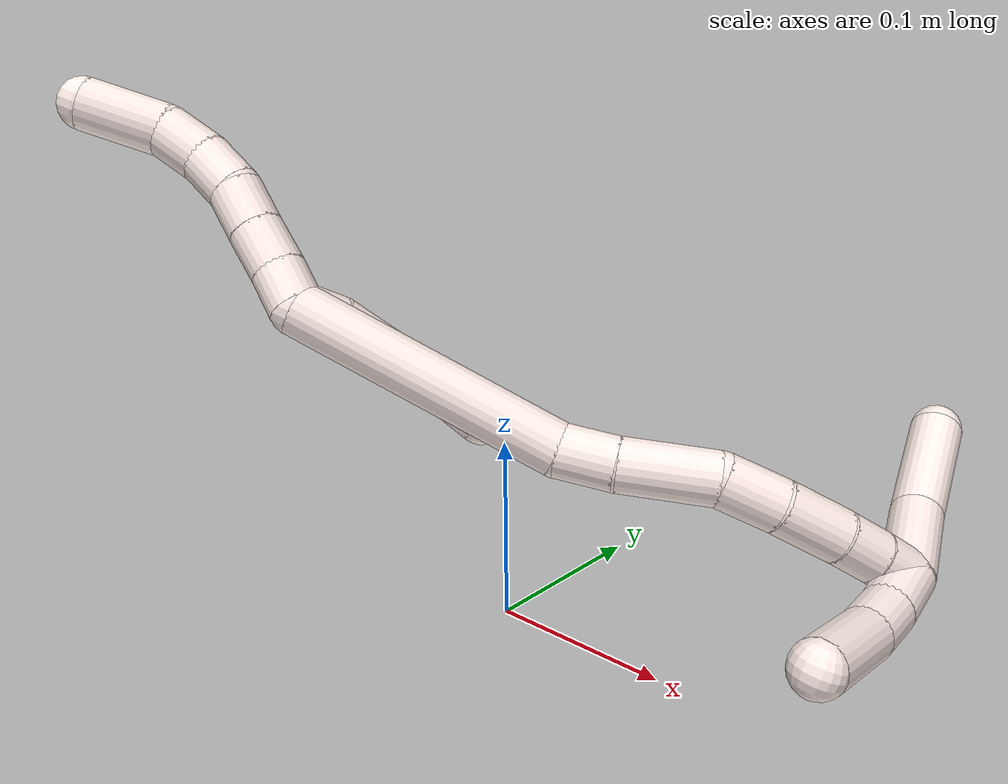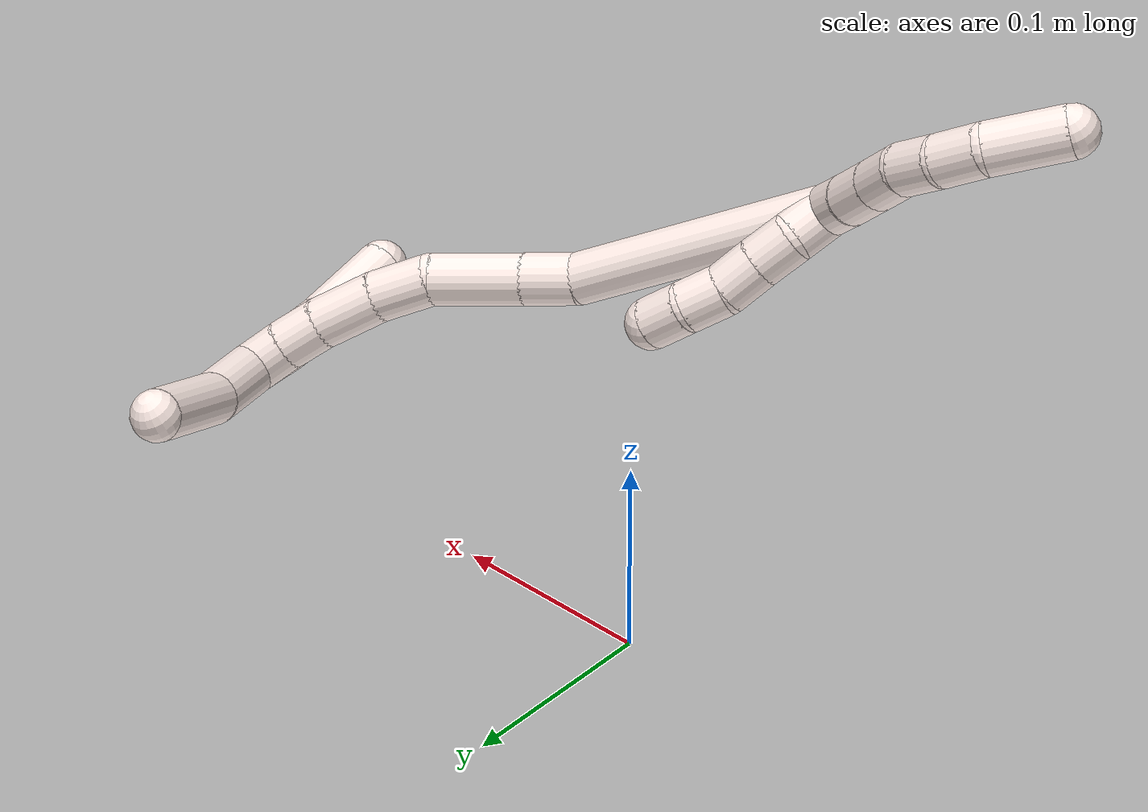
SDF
<sdf version="1.7">
 <world name="default">
  <model name="photoneo_s_sensor">
   <static>1</static>
   <pose>0 0 2 1.57079 1.57079 3.14159</pose>
   <link name="link">
    <inertial><mass>0.1</mass></inertial>
    <sensor name="sensor" type="depth">
     <update_rate>30</update_rate>
     <camera>
      <horizontal_fov>1.22</horizontal_fov>
      <image><width>1920</width><height>1200</height><format>B8G8R8</format></image>
      <clip><near>0.1</near><far>4</far></clip>
      <depth_camera><output>points</output></depth_camera>
     </camera>
     <plugin name="camera_plugin" filename="libgazebo_ros_depth_camera.so">
      <baseline>0.2</baseline>
      <alwaysOn>1</alwaysOn>
      <updateRate>0.0</updateRate>
      <cameraName>camera_ir</cameraName>
      <imageTopicName>/camera/color/image_raw</imageTopicName>
      <cameraInfoTopicName>/camera/color/camera_info</cameraInfoTopicName>
      <depthImageTopicName>/camera/depth/image_raw</depthImageTopicName>
      <depthImageCameraInfoTopicName>/camera/depth/camera_info</depthImageCameraInfoTopicName>
      <pointCloudTopicName>/camera/depth/points</pointCloudTopicName>
      <frameName>fr_optical</frameName>
      <pointCloudCutoff>0.1</pointCloudCutoff>
      <pointCloudCutoffMax>2.0</pointCloudCutoffMax>
      <distortionK1>0</distortionK1>
      <distortionK2>0</distortionK2>
      <distortionK3>0</distortionK3>
      <distortionT1>0</distortionT1>
      <distortionT2>0</distortionT2>
      <CxPrime>0</CxPrime>
      <Cx>0</Cx>
      <Cy>0</Cy>
      <focalLength>0</focalLength>
      <hackBaseline>0</hackBaseline>
     </plugin>
    </sensor>
   </link>
  </model>
  <model name="bin">
   <static>1</static>
   <link name="bottom">
    <collision name="collision-bottom">
     <pose>0 0 -0.01 0 -0 0</pose>
     <geometry><box><size>0.8 0.6 0.02</size></box></geometry>
     <surface>
      <friction><ode><mu>100</mu><mu2>100</mu2></ode></friction>
      <contact><collide_bitmask>65535</collide_bitmask></contact>
     </surface>
    </collision>
   </link>
   <link name="west_wall">
    <collision name="collision-west_wall">
     <pose>-0.41 0 0.1 0 -0 0</pose>
     <geometry><box><size>0.02 0.6 0.2</size></box></geometry>
     <surface>
      <friction><ode><mu>100</mu><mu2>100</mu2></ode></friction>
      <contact><collide_bitmask>65535</collide_bitmask></contact>
     </surface>
    </collision>
   </link>
   <link name="east_wall">
    <collision name="collision-east_wall">
     <pose>0.41 0 0.1 0 -0 0</pose>
     <geometry><box><size>0.02 0.6 0.2</size></box></geometry>
     <surface>
      <friction><ode><mu>100</mu><mu2>100</mu2></ode></friction>
      <contact><collide_bitmask>65535</collide_bitmask></contact>
     </surface>
    </collision>
   </link>
   <link name="south_wall">
    <collision name="collision-south_wall">
     <pose>0 -0.31 0.1 0 -0 0</pose>
     <geometry><box><size>0.8 0.02 0.2</size></box></geometry>
     <surface>
      <friction><ode><mu>100</mu><mu2>100</mu2></ode></friction>
      <contact><collide_bitmask>65535</collide_bitmask></contact>
     </surface>
    </collision>
   </link>
   <link name="north_wall">
    <collision name="collision-north_wall">
     <pose>0 0.31 0.1 0 -0 0</pose>
     <geometry><box><size>0.8 0.02 0.2</size></box></geometry>
     <surface>
      <friction><ode><mu>100</mu><mu2>100</mu2></ode></friction>
      <contact><collide_bitmask>65535</collide_bitmask></contact>
     </surface>
    </collision>
   </link>
  </model>
  <model name="11">
   <static>0</static>
   <link name="11">
    <collision name="collision-cylinder-e_1_2_8">
     <pose>-0.008106 -0.001695 0.005752 0.286511 -0.933836 -0.145169</pose>
     <geometry><cylinder><radius>0.0125</radius><length>0.020165</length></cylinder></geometry>
     <surface>
      <friction><ode><mu>1.16</mu><mu2>1.16</mu2><slip1>0</slip1><slip2>0</slip2></ode></friction>
      <contact><ode><kp>1e+06</kp><kd>1</kd><max_vel>0</max_vel><min_depth>0.001</min_depth></ode></contact>
     </surface>
    </collision>
    <visual name="visual-cylinder-e_1_2_8">
     <pose>-0.008106 -0.001695 0.005752 0.286511 -0.933836 -0.145169</pose>
     <geometry><cylinder><radius>0.0125</radius><length>0.020165</length></cylinder></geometry>
     <material><ambient>1 0.933333 0.909804 1</ambient></material>
    </visual>
    <collision name="collision-cylinder-e_2_8_9">
     <pose>-0.0251 -0.00608 0.017787 0.404571 -0.915365 -0.201358</pose>
     <geometry><cylinder><radius>0.0125</radius><length>0.022425</length></cylinder></geometry>
     <surface>
      <friction><ode><mu>1.16</mu><mu2>1.16</mu2><slip1>0</slip1><slip2>0</slip2></ode></friction>
      <contact><ode><kp>1e+06</kp><kd>1</kd><max_vel>0</max_vel><min_depth>0.001</min_depth></ode></contact>
     </surface>
    </collision>
    <visual name="visual-cylinder-e_2_8_9">
     <pose>-0.0251 -0.00608 0.017787 0.404571 -0.915365 -0.201358</pose>
     <geometry><cylinder><radius>0.0125</radius><length>0.022425</length></cylinder></geometry>
     <material><ambient>1 0.933333 0.909804 1</ambient></material>
    </visual>
    <collision name="collision-cylinder-e_3_9_10">
     <pose>-0.042721 -0.011149 0.030467 0.35609 -0.907287 -0.175024</pose>
     <geometry><cylinder><radius>0.0125</radius><length>0.022165</length></cylinder></geometry>
     <surface>
      <friction><ode><mu>1.16</mu><mu2>1.16</mu2><slip1>0</slip1><slip2>0</slip2></ode></friction>
      <contact><ode><kp>1e+06</kp><kd>1</kd><max_vel>0</max_vel><min_depth>0.001</min_depth></ode></contact>
     </surface>
    </collision>
    <visual name="visual-cylinder-e_3_9_10">
     <pose>-0.042721 -0.011149 0.030467 0.35609 -0.907287 -0.175024</pose>
     <geometry><cylinder><radius>0.0125</radius><length>0.022165</length></cylinder></geometry>
     <material><ambient>1 0.933333 0.909804 1</ambient></material>
    </visual>
    <collision name="collision-cylinder-e_4_10_11">
     <pose>-0.061548 -0.01679 0.040915 0.677852 -1.09512 -0.423469</pose>
     <geometry><cylinder><radius>0.0125</radius><length>0.022714</length></cylinder></geometry>
     <surface>
      <friction><ode><mu>1.16</mu><mu2>1.16</mu2><slip1>0</slip1><slip2>0</slip2></ode></friction>
      <contact><ode><kp>1e+06</kp><kd>1</kd><max_vel>0</max_vel><min_depth>0.001</min_depth></ode></contact>
     </surface>
    </collision>
    <visual name="visual-cylinder-e_4_10_11">
     <pose>-0.061548 -0.01679 0.040915 0.677852 -1.09512 -0.423469</pose>
     <geometry><cylinder><radius>0.0125</radius><length>0.022714</length></cylinder></geometry>
     <material><ambient>1 0.933333 0.909804 1</ambient></material>
    </visual>
    <collision name="collision-cylinder-e_5_11_12">
     <pose>-0.081588 -0.025691 0.047664 1.1246 -1.00955 -0.670093</pose>
     <geometry><cylinder><radius>0.0125</radius><length>0.023491</length></cylinder></geometry>
     <surface>
      <friction><ode><mu>1.16</mu><mu2>1.16</mu2><slip1>0</slip1><slip2>0</slip2></ode></friction>
      <contact><ode><kp>1e+06</kp><kd>1</kd><max_vel>0</max_vel><min_depth>0.001</min_depth></ode></contact>
     </surface>
    </collision>
    <visual name="visual-cylinder-e_5_11_12">
     <pose>-0.081588 -0.025691 0.047664 1.1246 -1.00955 -0.670093</pose>
     <geometry><cylinder><radius>0.0125</radius><length>0.023491</length></cylinder></geometry>
     <material><ambient>1 0.933333 0.909804 1</ambient></material>
    </visual>
    <collision name="collision-cylinder-e_6_12_6">
     <pose>-0.105941 -0.044486 0.049797 1.61366 -0.830407 -0.862518</pose>
     <geometry><cylinder><radius>0.0125</radius><length>0.039039</length></cylinder></geometry>
     <surface>
      <friction><ode><mu>1.16</mu><mu2>1.16</mu2><slip1>0</slip1><slip2>0</slip2></ode></friction>
      <contact><ode><kp>1e+06</kp><kd>1</kd><max_vel>0</max_vel><min_depth>0.001</min_depth></ode></contact>
     </surface>
    </collision>
    <visual name="visual-cylinder-e_6_12_6">
     <pose>-0.105941 -0.044486 0.049797 1.61366 -0.830407 -0.862518</pose>
     <geometry><cylinder><radius>0.0125</radius><length>0.039039</length></cylinder></geometry>
     <material><ambient>1 0.933333 0.909804 1</ambient></material>
    </visual>
    <collision name="collision-cylinder-e_1_2_13">
     <pose>0.002876 0.00954 -0.000846 -1.65923 0.291741 -0.318317</pose>
     <geometry><cylinder><radius>0.0125</radius><length>0.02</length></cylinder></geometry>
     <surface>
      <friction><ode><mu>1.16</mu><mu2>1.16</mu2><slip1>0</slip1><slip2>0</slip2></ode></friction>
      <contact><ode><kp>1e+06</kp><kd>1</kd><max_vel>0</max_vel><min_depth>0.001</min_depth></ode></contact>
     </surface>
    </collision>
    <visual name="visual-cylinder-e_1_2_13">
     <pose>0.002876 0.00954 -0.000846 -1.65923 0.291741 -0.318317</pose>
     <geometry><cylinder><radius>0.0125</radius><length>0.02</length></cylinder></geometry>
     <material><ambient>1 0.933333 0.909804 1</ambient></material>
    </visual>
    <collision name="collision-cylinder-e_2_13_14">
     <pose>0.010628 0.027339 -0.004523 -1.90101 0.509277 -0.698839</pose>
     <geometry><cylinder><radius>0.0125</radius><length>0.02</length></cylinder></geometry>
     <surface>
      <friction><ode><mu>1.16</mu><mu2>1.16</mu2><slip1>0</slip1><slip2>0</slip2></ode></friction>
      <contact><ode><kp>1e+06</kp><kd>1</kd><max_vel>0</max_vel><min_depth>0.001</min_depth></ode></contact>
     </surface>
    </collision>
    <visual name="visual-cylinder-e_2_13_14">
     <pose>0.010628 0.027339 -0.004523 -1.90101 0.509277 -0.698839</pose>
     <geometry><cylinder><radius>0.0125</radius><length>0.02</length></cylinder></geometry>
     <material><ambient>1 0.933333 0.909804 1</ambient></material>
    </visual>
    <collision name="collision-cylinder-e_3_14_15">
     <pose>0.020115 0.043963 -0.010315 -1.91108 0.479307 -0.665722</pose>
     <geometry><cylinder><radius>0.0125</radius><length>0.02</length></cylinder></geometry>
     <surface>
      <friction><ode><mu>1.16</mu><mu2>1.16</mu2><slip1>0</slip1><slip2>0</slip2></ode></friction>
      <contact><ode><kp>1e+06</kp><kd>1</kd><max_vel>0</max_vel><min_depth>0.001</min_depth></ode></contact>
     </surface>
    </collision>
    <visual name="visual-cylinder-e_3_14_15">
     <pose>0.020115 0.043963 -0.010315 -1.91108 0.479307 -0.665722</pose>
     <geometry><cylinder><radius>0.0125</radius><length>0.02</length></cylinder></geometry>
     <material><ambient>1 0.933333 0.909804 1</ambient></material>
    </visual>
    <collision name="collision-cylinder-e_4_15_16">
     <pose>0.031009 0.059967 -0.014749 -1.76124 0.679295 -0.80876</pose>
     <geometry><cylinder><radius>0.0125</radius><length>0.02</length></cylinder></geometry>
     <surface>
      <friction><ode><mu>1.16</mu><mu2>1.16</mu2><slip1>0</slip1><slip2>0</slip2></ode></friction>
      <contact><ode><kp>1e+06</kp><kd>1</kd><max_vel>0</max_vel><min_depth>0.001</min_depth></ode></contact>
     </surface>
    </collision>
    <visual name="visual-cylinder-e_4_15_16">
     <pose>0.031009 0.059967 -0.014749 -1.76124 0.679295 -0.80876</pose>
     <geometry><cylinder><radius>0.0125</radius><length>0.02</length></cylinder></geometry>
     <material><ambient>1 0.933333 0.909804 1</ambient></material>
    </visual>
    <collision name="collision-cylinder-e_5_16_5">
     <pose>0.044685 0.073564 -0.01936 -2.05553 0.832094 -1.26384</pose>
     <geometry><cylinder><radius>0.0125</radius><length>0.02</length></cylinder></geometry>
     <surface>
      <friction><ode><mu>1.16</mu><mu2>1.16</mu2><slip1>0</slip1><slip2>0</slip2></ode></friction>
      <contact><ode><kp>1e+06</kp><kd>1</kd><max_vel>0</max_vel><min_depth>0.001</min_depth></ode></contact>
     </surface>
    </collision>
    <visual name="visual-cylinder-e_5_16_5">
     <pose>0.044685 0.073564 -0.01936 -2.05553 0.832094 -1.26384</pose>
     <geometry><cylinder><radius>0.0125</radius><length>0.02</length></cylinder></geometry>
     <material><ambient>1 0.933333 0.909804 1</ambient></material>
    </visual>
    <collision name="collision-cylinder-e_1_2_17">
     <pose>0.050935 0.039112 -0.00873 -1.7904 0.904173 -1.08961</pose>
     <geometry><cylinder><radius>0.0125</radius><length>0.129619</length></cylinder></geometry>
     <surface>
      <friction><ode><mu>1.16</mu><mu2>1.16</mu2><slip1>0</slip1><slip2>0</slip2></ode></friction>
      <contact><ode><kp>1e+06</kp><kd>1</kd><max_vel>0</max_vel><min_depth>0.001</min_depth></ode></contact>
     </surface>
    </collision>
    <visual name="visual-cylinder-e_1_2_17">
     <pose>0.050935 0.039112 -0.00873 -1.7904 0.904173 -1.08961</pose>
     <geometry><cylinder><radius>0.0125</radius><length>0.129619</length></cylinder></geometry>
     <material><ambient>1 0.933333 0.909804 1</ambient></material>
    </visual>
    <collision name="collision-cylinder-e_2_17_18">
     <pose>0.112616 0.085363 -0.015664 -1.32432 0.97019 -0.779759</pose>
     <geometry><cylinder><radius>0.0125</radius><length>0.026053</length></cylinder></geometry>
     <surface>
      <friction><ode><mu>1.16</mu><mu2>1.16</mu2><slip1>0</slip1><slip2>0</slip2></ode></friction>
      <contact><ode><kp>1e+06</kp><kd>1</kd><max_vel>0</max_vel><min_depth>0.001</min_depth></ode></contact>
     </surface>
    </collision>
    <visual name="visual-cylinder-e_2_17_18">
     <pose>0.112616 0.085363 -0.015664 -1.32432 0.97019 -0.779759</pose>
     <geometry><cylinder><radius>0.0125</radius><length>0.026053</length></cylinder></geometry>
     <material><ambient>1 0.933333 0.909804 1</ambient></material>
    </visual>
    <collision name="collision-cylinder-e_3_18_19">
     <pose>0.140465 0.105798 -0.008908 -1.2138 0.878146 -0.630426</pose>
     <geometry><cylinder><radius>0.0125</radius><length>0.044445</length></cylinder></geometry>
     <surface>
      <friction><ode><mu>1.16</mu><mu2>1.16</mu2><slip1>0</slip1><slip2>0</slip2></ode></friction>
      <contact><ode><kp>1e+06</kp><kd>1</kd><max_vel>0</max_vel><min_depth>0.001</min_depth></ode></contact>
     </surface>
    </collision>
    <visual name="visual-cylinder-e_3_18_19">
     <pose>0.140465 0.105798 -0.008908 -1.2138 0.878146 -0.630426</pose>
     <geometry><cylinder><radius>0.0125</radius><length>0.044445</length></cylinder></geometry>
     <material><ambient>1 0.933333 0.909804 1</ambient></material>
    </visual>
    <collision name="collision-cylinder-e_4_19_20">
     <pose>0.167643 0.128839 -0.005114 -1.68972 0.798588 -0.887521</pose>
     <geometry><cylinder><radius>0.0125</radius><length>0.028132</length></cylinder></geometry>
     <surface>
      <friction><ode><mu>1.16</mu><mu2>1.16</mu2><slip1>0</slip1><slip2>0</slip2></ode></friction>
      <contact><ode><kp>1e+06</kp><kd>1</kd><max_vel>0</max_vel><min_depth>0.001</min_depth></ode></contact>
     </surface>
    </collision>
    <visual name="visual-cylinder-e_4_19_20">
     <pose>0.167643 0.128839 -0.005114 -1.68972 0.798588 -0.887521</pose>
     <geometry><cylinder><radius>0.0125</radius><length>0.028132</length></cylinder></geometry>
     <material><ambient>1 0.933333 0.909804 1</ambient></material>
    </visual>
    <collision name="collision-cylinder-e_5_20_21">
     <pose>0.187391 0.15061 -0.008534 -1.75622 0.668905 -0.793133</pose>
     <geometry><cylinder><radius>0.0125</radius><length>0.031193</length></cylinder></geometry>
     <surface>
      <friction><ode><mu>1.16</mu><mu2>1.16</mu2><slip1>0</slip1><slip2>0</slip2></ode></friction>
      <contact><ode><kp>1e+06</kp><kd>1</kd><max_vel>0</max_vel><min_depth>0.001</min_depth></ode></contact>
     </surface>
    </collision>
    <visual name="visual-cylinder-e_5_20_21">
     <pose>0.187391 0.15061 -0.008534 -1.75622 0.668905 -0.793133</pose>
     <geometry><cylinder><radius>0.0125</radius><length>0.031193</length></cylinder></geometry>
     <material><ambient>1 0.933333 0.909804 1</ambient></material>
    </visual>
    <collision name="collision-cylinder-e_6_21_22">
     <pose>0.202554 0.17105 -0.012769 -1.80183 0.565929 -0.703653</pose>
     <geometry><cylinder><radius>0.0125</radius><length>0.020481</length></cylinder></geometry>
     <surface>
      <friction><ode><mu>1.16</mu><mu2>1.16</mu2><slip1>0</slip1><slip2>0</slip2></ode></friction>
      <contact><ode><kp>1e+06</kp><kd>1</kd><max_vel>0</max_vel><min_depth>0.001</min_depth></ode></contact>
     </surface>
    </collision>
    <visual name="visual-cylinder-e_6_21_22">
     <pose>0.202554 0.17105 -0.012769 -1.80183 0.565929 -0.703653</pose>
     <geometry><cylinder><radius>0.0125</radius><length>0.020481</length></cylinder></geometry>
     <material><ambient>1 0.933333 0.909804 1</ambient></material>
    </visual>
    <collision name="collision-cylinder-e_7_22_1">
     <pose>0.213013 0.187864 -0.017101 -1.84386 0.5177 -0.671811</pose>
     <geometry><cylinder><radius>0.0125</radius><length>0.020076</length></cylinder></geometry>
     <surface>
      <friction><ode><mu>1.16</mu><mu2>1.16</mu2><slip1>0</slip1><slip2>0</slip2></ode></friction>
      <contact><ode><kp>1e+06</kp><kd>1</kd><max_vel>0</max_vel><min_depth>0.001</min_depth></ode></contact>
     </surface>
    </collision>
    <visual name="visual-cylinder-e_7_22_1">
     <pose>0.213013 0.187864 -0.017101 -1.84386 0.5177 -0.671811</pose>
     <geometry><cylinder><radius>0.0125</radius><length>0.020076</length></cylinder></geometry>
     <material><ambient>1 0.933333 0.909804 1</ambient></material>
    </visual>
    <collision name="collision-cylinder-e_1_1_23">
     <pose>0.207636 0.212274 -0.008491 -0.970425 -0.489776 0.262016</pose>
     <geometry><cylinder><radius>0.0125</radius><length>0.043979</length></cylinder></geometry>
     <surface>
      <friction><ode><mu>1.16</mu><mu2>1.16</mu2><slip1>0</slip1><slip2>0</slip2></ode></friction>
      <contact><ode><kp>1e+06</kp><kd>1</kd><max_vel>0</max_vel><min_depth>0.001</min_depth></ode></contact>
     </surface>
    </collision>
    <visual name="visual-cylinder-e_1_1_23">
     <pose>0.207636 0.212274 -0.008491 -0.970425 -0.489776 0.262016</pose>
     <geometry><cylinder><radius>0.0125</radius><length>0.043979</length></cylinder></geometry>
     <material><ambient>1 0.933333 0.909804 1</ambient></material>
    </visual>
    <collision name="collision-cylinder-e_2_23_4">
     <pose>0.185869 0.246136 0.020787 -0.772554 -0.420035 0.172957</pose>
     <geometry><cylinder><radius>0.0125</radius><length>0.056021</length></cylinder></geometry>
     <surface>
      <friction><ode><mu>1.16</mu><mu2>1.16</mu2><slip1>0</slip1><slip2>0</slip2></ode></friction>
      <contact><ode><kp>1e+06</kp><kd>1</kd><max_vel>0</max_vel><min_depth>0.001</min_depth></ode></contact>
     </surface>
    </collision>
    <visual name="visual-cylinder-e_2_23_4">
     <pose>0.185869 0.246136 0.020787 -0.772554 -0.420035 0.172957</pose>
     <geometry><cylinder><radius>0.0125</radius><length>0.056021</length></cylinder></geometry>
     <material><ambient>1 0.933333 0.909804 1</ambient></material>
    </visual>
    <collision name="collision-cylinder-e_1_1_24">
     <pose>0.221826 0.183757 -0.025505 2.02146 0.270014 0.426659</pose>
     <geometry><cylinder><radius>0.0125</radius><length>0.028833</length></cylinder></geometry>
     <surface>
      <friction><ode><mu>1.16</mu><mu2>1.16</mu2><slip1>0</slip1><slip2>0</slip2></ode></friction>
      <contact><ode><kp>1e+06</kp><kd>1</kd><max_vel>0</max_vel><min_depth>0.001</min_depth></ode></contact>
     </surface>
    </collision>
    <visual name="visual-cylinder-e_1_1_24">
     <pose>0.221826 0.183757 -0.025505 2.02146 0.270014 0.426659</pose>
     <geometry><cylinder><radius>0.0125</radius><length>0.028833</length></cylinder></geometry>
     <material><ambient>1 0.933333 0.909804 1</ambient></material>
    </visual>
    <collision name="collision-cylinder-e_2_24_25">
     <pose>0.228139 0.15991 -0.035568 1.91079 0.202339 0.285229</pose>
     <geometry><cylinder><radius>0.0125</radius><length>0.024557</length></cylinder></geometry>
     <surface>
      <friction><ode><mu>1.16</mu><mu2>1.16</mu2><slip1>0</slip1><slip2>0</slip2></ode></friction>
      <contact><ode><kp>1e+06</kp><kd>1</kd><max_vel>0</max_vel><min_depth>0.001</min_depth></ode></contact>
     </surface>
    </collision>
    <visual name="visual-cylinder-e_2_24_25">
     <pose>0.228139 0.15991 -0.035568 1.91079 0.202339 0.285229</pose>
     <geometry><cylinder><radius>0.0125</radius><length>0.024557</length></cylinder></geometry>
     <material><ambient>1 0.933333 0.909804 1</ambient></material>
    </visual>
    <collision name="collision-cylinder-e_3_25_3">
     <pose>0.234275 0.125936 -0.043744 1.75277 0.158087 0.189656</pose>
     <geometry><cylinder><radius>0.0125</radius><length>0.04661</length></cylinder></geometry>
     <surface>
      <friction><ode><mu>1.16</mu><mu2>1.16</mu2><slip1>0</slip1><slip2>0</slip2></ode></friction>
      <contact><ode><kp>1e+06</kp><kd>1</kd><max_vel>0</max_vel><min_depth>0.001</min_depth></ode></contact>
     </surface>
    </collision>
    <visual name="visual-cylinder-e_3_25_3">
     <pose>0.234275 0.125936 -0.043744 1.75277 0.158087 0.189656</pose>
     <geometry><cylinder><radius>0.0125</radius><length>0.04661</length></cylinder></geometry>
     <material><ambient>1 0.933333 0.909804 1</ambient></material>
    </visual>
    <collision name="collision-sphere-3">
     <pose>0.237944 0.103302 -0.047909 0 -0 0</pose>
     <geometry><sphere><radius>0.0125</radius></sphere></geometry>
     <surface>
      <friction><ode><mu>1.16</mu><mu2>1.16</mu2><slip1>0</slip1><slip2>0</slip2></ode></friction>
      <contact><ode><kp>1e+06</kp><kd>1</kd><max_vel>0</max_vel><min_depth>0.001</min_depth></ode></contact>
     </surface>
    </collision>
    <visual name="visual-sphere-3">
     <pose>0.237944 0.103302 -0.047909 0 -0 0</pose>
     <geometry><sphere><radius>0.0125</radius></sphere></geometry>
     <material><ambient>1 0.933333 0.909804 1</ambient></material>
    </visual>
    <collision name="collision-sphere-25">
     <pose>0.230606 0.148571 -0.039579 0 -0 0</pose>
     <geometry><sphere><radius>0.0125</radius></sphere></geometry>
     <surface>
      <friction><ode><mu>1.16</mu><mu2>1.16</mu2><slip1>0</slip1><slip2>0</slip2></ode></friction>
      <contact><ode><kp>1e+06</kp><kd>1</kd><max_vel>0</max_vel><min_depth>0.001</min_depth></ode></contact>
     </surface>
    </collision>
    <visual name="visual-sphere-25">
     <pose>0.230606 0.148571 -0.039579 0 -0 0</pose>
     <geometry><sphere><radius>0.0125</radius></sphere></geometry>
     <material><ambient>1 0.933333 0.909804 1</ambient></material>
    </visual>
    <collision name="collision-sphere-24">
     <pose>0.225671 0.17125 -0.031556 0 -0 0</pose>
     <geometry><sphere><radius>0.0125</radius></sphere></geometry>
     <surface>
      <friction><ode><mu>1.16</mu><mu2>1.16</mu2><slip1>0</slip1><slip2>0</slip2></ode></friction>
      <contact><ode><kp>1e+06</kp><kd>1</kd><max_vel>0</max_vel><min_depth>0.001</min_depth></ode></contact>
     </surface>
    </collision>
    <visual name="visual-sphere-24">
     <pose>0.225671 0.17125 -0.031556 0 -0 0</pose>
     <geometry><sphere><radius>0.0125</radius></sphere></geometry>
     <material><ambient>1 0.933333 0.909804 1</ambient></material>
    </visual>
    <collision name="collision-sphere-4">
     <pose>0.174446 0.263987 0.039103 0 -0 0</pose>
     <geometry><sphere><radius>0.0125</radius></sphere></geometry>
     <surface>
      <friction><ode><mu>1.16</mu><mu2>1.16</mu2><slip1>0</slip1><slip2>0</slip2></ode></friction>
      <contact><ode><kp>1e+06</kp><kd>1</kd><max_vel>0</max_vel><min_depth>0.001</min_depth></ode></contact>
     </surface>
    </collision>
    <visual name="visual-sphere-4">
     <pose>0.174446 0.263987 0.039103 0 -0 0</pose>
     <geometry><sphere><radius>0.0125</radius></sphere></geometry>
     <material><ambient>1 0.933333 0.909804 1</ambient></material>
    </visual>
    <collision name="collision-sphere-23">
     <pose>0.197291 0.228285 0.002472 0 -0 0</pose>
     <geometry><sphere><radius>0.0125</radius></sphere></geometry>
     <surface>
      <friction><ode><mu>1.16</mu><mu2>1.16</mu2><slip1>0</slip1><slip2>0</slip2></ode></friction>
      <contact><ode><kp>1e+06</kp><kd>1</kd><max_vel>0</max_vel><min_depth>0.001</min_depth></ode></contact>
     </surface>
    </collision>
    <visual name="visual-sphere-23">
     <pose>0.197291 0.228285 0.002472 0 -0 0</pose>
     <geometry><sphere><radius>0.0125</radius></sphere></geometry>
     <material><ambient>1 0.933333 0.909804 1</ambient></material>
    </visual>
    <collision name="collision-sphere-1">
     <pose>0.21798 0.196263 -0.019453 0 -0 0</pose>
     <geometry><sphere><radius>0.0125</radius></sphere></geometry>
     <surface>
      <friction><ode><mu>1.16</mu><mu2>1.16</mu2><slip1>0</slip1><slip2>0</slip2></ode></friction>
      <contact><ode><kp>1e+06</kp><kd>1</kd><max_vel>0</max_vel><min_depth>0.001</min_depth></ode></contact>
     </surface>
    </collision>
    <visual name="visual-sphere-1">
     <pose>0.21798 0.196263 -0.019453 0 -0 0</pose>
     <geometry><sphere><radius>0.0125</radius></sphere></geometry>
     <material><ambient>1 0.933333 0.909804 1</ambient></material>
    </visual>
    <collision name="collision-sphere-22">
     <pose>0.208045 0.179464 -0.014748 0 -0 0</pose>
     <geometry><sphere><radius>0.0125</radius></sphere></geometry>
     <surface>
      <friction><ode><mu>1.16</mu><mu2>1.16</mu2><slip1>0</slip1><slip2>0</slip2></ode></friction>
      <contact><ode><kp>1e+06</kp><kd>1</kd><max_vel>0</max_vel><min_depth>0.001</min_depth></ode></contact>
     </surface>
    </collision>
    <visual name="visual-sphere-22">
     <pose>0.208045 0.179464 -0.014748 0 -0 0</pose>
     <geometry><sphere><radius>0.0125</radius></sphere></geometry>
     <material><ambient>1 0.933333 0.909804 1</ambient></material>
    </visual>
    <collision name="collision-sphere-21">
     <pose>0.197063 0.162636 -0.01079 0 -0 0</pose>
     <geometry><sphere><radius>0.0125</radius></sphere></geometry>
     <surface>
      <friction><ode><mu>1.16</mu><mu2>1.16</mu2><slip1>0</slip1><slip2>0</slip2></ode></friction>
      <contact><ode><kp>1e+06</kp><kd>1</kd><max_vel>0</max_vel><min_depth>0.001</min_depth></ode></contact>
     </surface>
    </collision>
    <visual name="visual-sphere-21">
     <pose>0.197063 0.162636 -0.01079 0 -0 0</pose>
     <geometry><sphere><radius>0.0125</radius></sphere></geometry>
     <material><ambient>1 0.933333 0.909804 1</ambient></material>
    </visual>
    <collision name="collision-sphere-12">
     <pose>-0.091532 -0.03133 0.050362 0 -0 0</pose>
     <geometry><sphere><radius>0.0125</radius></sphere></geometry>
     <surface>
      <friction><ode><mu>1.16</mu><mu2>1.16</mu2><slip1>0</slip1><slip2>0</slip2></ode></friction>
      <contact><ode><kp>1e+06</kp><kd>1</kd><max_vel>0</max_vel><min_depth>0.001</min_depth></ode></contact>
     </surface>
    </collision>
    <visual name="visual-sphere-12">
     <pose>-0.091532 -0.03133 0.050362 0 -0 0</pose>
     <geometry><sphere><radius>0.0125</radius></sphere></geometry>
     <material><ambient>1 0.933333 0.909804 1</ambient></material>
    </visual>
    <collision name="collision-sphere-11">
     <pose>-0.071644 -0.020052 0.044966 0 -0 0</pose>
     <geometry><sphere><radius>0.0125</radius></sphere></geometry>
     <surface>
      <friction><ode><mu>1.16</mu><mu2>1.16</mu2><slip1>0</slip1><slip2>0</slip2></ode></friction>
      <contact><ode><kp>1e+06</kp><kd>1</kd><max_vel>0</max_vel><min_depth>0.001</min_depth></ode></contact>
     </surface>
    </collision>
    <visual name="visual-sphere-11">
     <pose>-0.071644 -0.020052 0.044966 0 -0 0</pose>
     <geometry><sphere><radius>0.0125</radius></sphere></geometry>
     <material><ambient>1 0.933333 0.909804 1</ambient></material>
    </visual>
    <collision name="collision-sphere-10">
     <pose>-0.051452 -0.013529 0.036864 0 -0 0</pose>
     <geometry><sphere><radius>0.0125</radius></sphere></geometry>
     <surface>
      <friction><ode><mu>1.16</mu><mu2>1.16</mu2><slip1>0</slip1><slip2>0</slip2></ode></friction>
      <contact><ode><kp>1e+06</kp><kd>1</kd><max_vel>0</max_vel><min_depth>0.001</min_depth></ode></contact>
     </surface>
    </collision>
    <visual name="visual-sphere-10">
     <pose>-0.051452 -0.013529 0.036864 0 -0 0</pose>
     <geometry><sphere><radius>0.0125</radius></sphere></geometry>
     <material><ambient>1 0.933333 0.909804 1</ambient></material>
    </visual>
    <collision name="collision-sphere-9">
     <pose>-0.033989 -0.00877 0.024069 0 -0 0</pose>
     <geometry><sphere><radius>0.0125</radius></sphere></geometry>
     <surface>
      <friction><ode><mu>1.16</mu><mu2>1.16</mu2><slip1>0</slip1><slip2>0</slip2></ode></friction>
      <contact><ode><kp>1e+06</kp><kd>1</kd><max_vel>0</max_vel><min_depth>0.001</min_depth></ode></contact>
     </surface>
    </collision>
    <visual name="visual-sphere-9">
     <pose>-0.033989 -0.00877 0.024069 0 -0 0</pose>
     <geometry><sphere><radius>0.0125</radius></sphere></geometry>
     <material><ambient>1 0.933333 0.909804 1</ambient></material>
    </visual>
    <collision name="collision-sphere-2">
     <geometry><sphere><radius>0.0125</radius></sphere></geometry>
     <surface>
      <friction><ode><mu>1.16</mu><mu2>1.16</mu2><slip1>0</slip1><slip2>0</slip2></ode></friction>
      <contact><ode><kp>1e+06</kp><kd>1</kd><max_vel>0</max_vel><min_depth>0.001</min_depth></ode></contact>
     </surface>
    </collision>
    <visual name="visual-sphere-2">
     <geometry><sphere><radius>0.0125</radius></sphere></geometry>
     <material><ambient>1 0.933333 0.909804 1</ambient></material>
    </visual>
    <collision name="collision-sphere-19">
     <pose>0.157566 0.119094 -0.003949 0 -0 0</pose>
     <geometry><sphere><radius>0.0125</radius></sphere></geometry>
     <surface>
      <friction><ode><mu>1.16</mu><mu2>1.16</mu2><slip1>0</slip1><slip2>0</slip2></ode></friction>
      <contact><ode><kp>1e+06</kp><kd>1</kd><max_vel>0</max_vel><min_depth>0.001</min_depth></ode></contact>
     </surface>
    </collision>
    <visual name="visual-sphere-19">
     <pose>0.157566 0.119094 -0.003949 0 -0 0</pose>
     <geometry><sphere><radius>0.0125</radius></sphere></geometry>
     <material><ambient>1 0.933333 0.909804 1</ambient></material>
    </visual>
    <collision name="collision-sphere-8">
     <pose>-0.016211 -0.003389 0.011505 0 -0 0</pose>
     <geometry><sphere><radius>0.0125</radius></sphere></geometry>
     <surface>
      <friction><ode><mu>1.16</mu><mu2>1.16</mu2><slip1>0</slip1><slip2>0</slip2></ode></friction>
      <contact><ode><kp>1e+06</kp><kd>1</kd><max_vel>0</max_vel><min_depth>0.001</min_depth></ode></contact>
     </surface>
    </collision>
    <visual name="visual-sphere-8">
     <pose>-0.016211 -0.003389 0.011505 0 -0 0</pose>
     <geometry><sphere><radius>0.0125</radius></sphere></geometry>
     <material><ambient>1 0.933333 0.909804 1</ambient></material>
    </visual>
    <collision name="collision-sphere-6">
     <pose>-0.120351 -0.057641 0.049233 0 -0 0</pose>
     <geometry><sphere><radius>0.0125</radius></sphere></geometry>
     <surface>
      <friction><ode><mu>1.16</mu><mu2>1.16</mu2><slip1>0</slip1><slip2>0</slip2></ode></friction>
      <contact><ode><kp>1e+06</kp><kd>1</kd><max_vel>0</max_vel><min_depth>0.001</min_depth></ode></contact>
     </surface>
    </collision>
    <visual name="visual-sphere-6">
     <pose>-0.120351 -0.057641 0.049233 0 -0 0</pose>
     <geometry><sphere><radius>0.0125</radius></sphere></geometry>
     <material><ambient>1 0.933333 0.909804 1</ambient></material>
    </visual>
    <collision name="collision-sphere-13">
     <pose>0.005752 0.01908 -0.001692 0 -0 0</pose>
     <geometry><sphere><radius>0.0125</radius></sphere></geometry>
     <surface>
      <friction><ode><mu>1.16</mu><mu2>1.16</mu2><slip1>0</slip1><slip2>0</slip2></ode></friction>
      <contact><ode><kp>1e+06</kp><kd>1</kd><max_vel>0</max_vel><min_depth>0.001</min_depth></ode></contact>
     </surface>
    </collision>
    <visual name="visual-sphere-13">
     <pose>0.005752 0.01908 -0.001692 0 -0 0</pose>
     <geometry><sphere><radius>0.0125</radius></sphere></geometry>
     <material><ambient>1 0.933333 0.909804 1</ambient></material>
    </visual>
    <collision name="collision-sphere-14">
     <pose>0.015503 0.035599 -0.007354 0 -0 0</pose>
     <geometry><sphere><radius>0.0125</radius></sphere></geometry>
     <surface>
      <friction><ode><mu>1.16</mu><mu2>1.16</mu2><slip1>0</slip1><slip2>0</slip2></ode></friction>
      <contact><ode><kp>1e+06</kp><kd>1</kd><max_vel>0</max_vel><min_depth>0.001</min_depth></ode></contact>
     </surface>
    </collision>
    <visual name="visual-sphere-14">
     <pose>0.015503 0.035599 -0.007354 0 -0 0</pose>
     <geometry><sphere><radius>0.0125</radius></sphere></geometry>
     <material><ambient>1 0.933333 0.909804 1</ambient></material>
    </visual>
    <collision name="collision-sphere-15">
     <pose>0.024727 0.052327 -0.013276 0 -0 0</pose>
     <geometry><sphere><radius>0.0125</radius></sphere></geometry>
     <surface>
      <friction><ode><mu>1.16</mu><mu2>1.16</mu2><slip1>0</slip1><slip2>0</slip2></ode></friction>
      <contact><ode><kp>1e+06</kp><kd>1</kd><max_vel>0</max_vel><min_depth>0.001</min_depth></ode></contact>
     </surface>
    </collision>
    <visual name="visual-sphere-15">
     <pose>0.024727 0.052327 -0.013276 0 -0 0</pose>
     <geometry><sphere><radius>0.0125</radius></sphere></geometry>
     <material><ambient>1 0.933333 0.909804 1</ambient></material>
    </visual>
    <collision name="collision-sphere-16">
     <pose>0.037292 0.067606 -0.016222 0 -0 0</pose>
     <geometry><sphere><radius>0.0125</radius></sphere></geometry>
     <surface>
      <friction><ode><mu>1.16</mu><mu2>1.16</mu2><slip1>0</slip1><slip2>0</slip2></ode></friction>
      <contact><ode><kp>1e+06</kp><kd>1</kd><max_vel>0</max_vel><min_depth>0.001</min_depth></ode></contact>
     </surface>
    </collision>
    <visual name="visual-sphere-16">
     <pose>0.037292 0.067606 -0.016222 0 -0 0</pose>
     <geometry><sphere><radius>0.0125</radius></sphere></geometry>
     <material><ambient>1 0.933333 0.909804 1</ambient></material>
    </visual>
    <collision name="collision-sphere-5">
     <pose>0.052078 0.079522 -0.022497 0 -0 0</pose>
     <geometry><sphere><radius>0.0125</radius></sphere></geometry>
     <surface>
      <friction><ode><mu>1.16</mu><mu2>1.16</mu2><slip1>0</slip1><slip2>0</slip2></ode></friction>
      <contact><ode><kp>1e+06</kp><kd>1</kd><max_vel>0</max_vel><min_depth>0.001</min_depth></ode></contact>
     </surface>
    </collision>
    <visual name="visual-sphere-5">
     <pose>0.052078 0.079522 -0.022497 0 -0 0</pose>
     <geometry><sphere><radius>0.0125</radius></sphere></geometry>
     <material><ambient>1 0.933333 0.909804 1</ambient></material>
    </visual>
    <collision name="collision-sphere-17">
     <pose>0.101869 0.078223 -0.01746 0 -0 0</pose>
     <geometry><sphere><radius>0.0125</radius></sphere></geometry>
     <surface>
      <friction><ode><mu>1.16</mu><mu2>1.16</mu2><slip1>0</slip1><slip2>0</slip2></ode></friction>
      <contact><ode><kp>1e+06</kp><kd>1</kd><max_vel>0</max_vel><min_depth>0.001</min_depth></ode></contact>
     </surface>
    </collision>
    <visual name="visual-sphere-17">
     <pose>0.101869 0.078223 -0.01746 0 -0 0</pose>
     <geometry><sphere><radius>0.0125</radius></sphere></geometry>
     <material><ambient>1 0.933333 0.909804 1</ambient></material>
    </visual>
    <collision name="collision-sphere-18">
     <pose>0.123363 0.092502 -0.013868 0 -0 0</pose>
     <geometry><sphere><radius>0.0125</radius></sphere></geometry>
     <surface>
      <friction><ode><mu>1.16</mu><mu2>1.16</mu2><slip1>0</slip1><slip2>0</slip2></ode></friction>
      <contact><ode><kp>1e+06</kp><kd>1</kd><max_vel>0</max_vel><min_depth>0.001</min_depth></ode></contact>
     </surface>
    </collision>
    <visual name="visual-sphere-18">
     <pose>0.123363 0.092502 -0.013868 0 -0 0</pose>
     <geometry><sphere><radius>0.0125</radius></sphere></geometry>
     <material><ambient>1 0.933333 0.909804 1</ambient></material>
    </visual>
    <collision name="collision-sphere-20">
     <pose>0.177719 0.138584 -0.006278 0 -0 0</pose>
     <geometry><sphere><radius>0.0125</radius></sphere></geometry>
     <surface>
      <friction><ode><mu>1.16</mu><mu2>1.16</mu2><slip1>0</slip1><slip2>0</slip2></ode></friction>
      <contact><ode><kp>1e+06</kp><kd>1</kd><max_vel>0</max_vel><min_depth>0.001</min_depth></ode></contact>
     </surface>
    </collision>
    <visual name="visual-sphere-20">
     <pose>0.177719 0.138584 -0.006278 0 -0 0</pose>
     <geometry><sphere><radius>0.0125</radius></sphere></geometry>
     <material><ambient>1 0.933333 0.909804 1</ambient></material>
    </visual>
    <inertial>
     <pose>0.09372 0.089281 -0.00216 0 -0 0</pose>
     <mass>0.75</mass>
     <inertia><ixx>1.1e-05</ixx><ixy>0</ixy><ixz>0</ixz><iyy>5e-05</iyy><iyz>0</iyz><izz>-0.00027</izz></inertia>
    </inertial>
   </link>
   <pose>-0.018744 -0.11279 0.19444 -0.374448 0.114186 -0.109687</pose>
  </model>
 </world>
</sdf>
